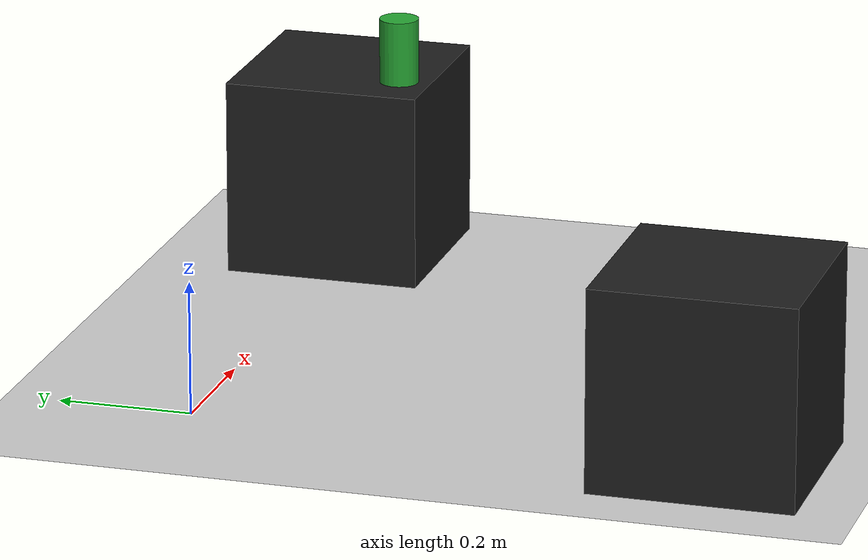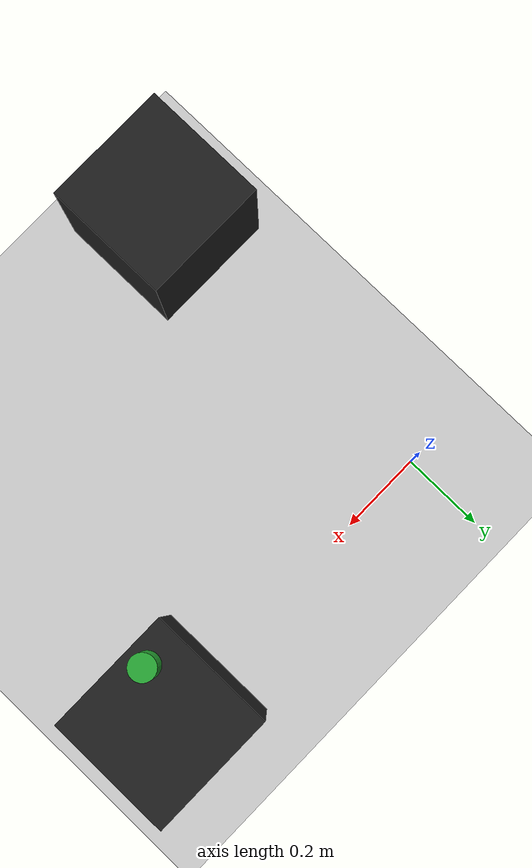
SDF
<?xml version="1.0" ?>
<sdf version="1.6">
  <world name="default">

  <plugin name="gazebo_ros_state" filename="libgazebo_ros_state.so">
      <ros>
        <namespace>/</namespace>
      </ros>
    </plugin>

    <include><uri>model://sun</uri></include>
    <include><uri>model://ground_plane</uri></include>

    <model name="black_table">
      <static>true</static>
      <pose>0.775 0 0.15 0 0 0</pose>
      <link name="link">
        <collision name="collision"><geometry><box><size>0.3 0.3 0.3</size></box></geometry></collision>
        <visual name="visual">
          <geometry><box><size>0.3 0.3 0.3</size></box></geometry>
          <material>
            <script><uri>file://media/materials/scripts/gazebo.material</uri><name>Gazebo/Black</name></script>
          </material>
        </visual>
      </link>
    </model>

    <model name="black_table_2">
      <static>true</static>
      <pose>0.0 -0.775 0.15 0 0 0</pose>
      <link name="link">
        <collision name="collision"><geometry><box><size>0.3 0.3 0.3</size></box></geometry></collision>
        <visual name="visual">
          <geometry><box><size>0.3 0.3 0.3</size></box></geometry>
          <material>
            <script><uri>file://media/materials/scripts/gazebo.material</uri><name>Gazebo/Black</name></script>
          </material>
        </visual>
      </link>
    </model>

    <model name="green_can">
      <pose>0.71 -0.1 0.35 0 0 0</pose> <!--x范围0.66-0.78-->
      <link name="link">

        <inertial><mass>0.3</mass></inertial>

        <collision name="collision">
           <surface>
            <friction>
              <ode><mu>100.0</mu><mu2>100.0</mu2></ode>
            </friction>
            <contact>
              <ode>
                <kp>10000.0</kp>
                <kd>1.0</kd>
                <min_depth>0.001</min_depth>
                <max_vel>0.0</max_vel>
              </ode>
            </contact>
          </surface>
          <geometry><cylinder><radius>0.03</radius><length>0.1</length></cylinder></geometry>
        </collision>
        <visual name="visual">
          <geometry><cylinder><radius>0.03</radius><length>0.1</length></cylinder></geometry>
          <material>
            <script><uri>file://media/materials/scripts/gazebo.material</uri><name>Gazebo/Green</name></script>
          </material>
        </visual>
      </link>
    </model>
  </world>
</sdf>
